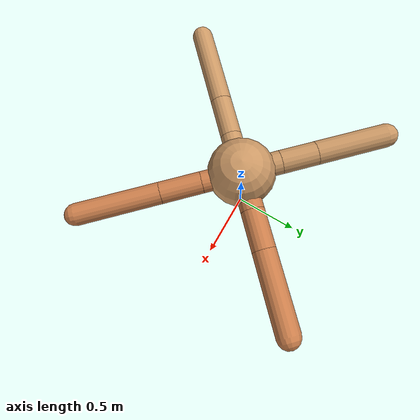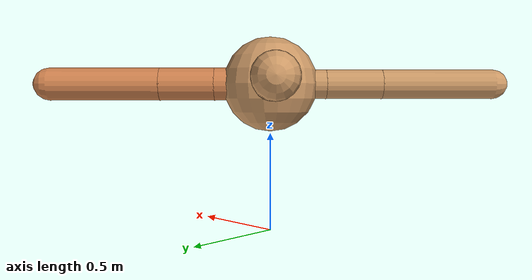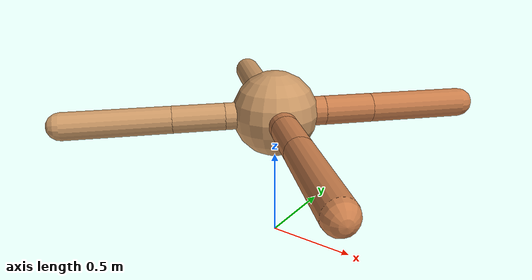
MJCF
<?xml version="1.0" ?>
<mujoco model="ant">

	<compiler angle="degree" coordinate="local" inertiafromgeom="true"/>

	<option integrator="RK4" timestep="0.01"/>

	<custom>

		<numeric data="0.0 0.0 0.55 1.0 0.0 0.0 0.0 0.0 1.0 0.0 -1.0 0.0 -1.0 0.0 1.0" name="init_qpos"/>

	</custom>

	<default>

		<joint armature="1" damping="1" limited="true"/>

		<geom conaffinity="0" condim="3" density="5.0" friction="1.5 0.1 0.1" margin="0.01" rgba="0.8 0.6 0.4 1"/>

	</default>

	<worldbody>

		<body name="torso" pos="0 0 0.75">

			<geom name="torso_geom" pos="0 0 0" size="0.23957215124233633" type="sphere"/>

			<!--joint armature="0" damping="0" limited="false" margin="0.01" name="root" pos="0 0 0" type="free"/-->

			<body name="front_left_leg" pos="0 0 0">

				<geom fromto="0 0 0 0.2 0.2 0" name="aux_1_geom" size="0.08296362918592907" type="capsule" rgba=".8 .5 .3 1"/>

				<body name="aux_1" pos="0.2 0.2 0">

					<joint axis="0 0 1" name="hip_1" pos="0.0 0.0 0.0" range="-40 40" type="hinge"/>

					<geom fromto="0 0 0 0.19518618902544937 0.19518618902544937 0" name="left_leg_geom" size="0.08296362918592907" type="capsule" rgba=".8 .5 .3 1"/>

					<body pos="0.19518618902544937 0.19518618902544937 0" name="front_left_foot">

						<joint axis="-1 1 0" name="ankle_1" pos="0.0 0.0 0.0" range="30 100" type="hinge"/>

						<geom fromto="0 0 0 0.39037237805089875 0.39037237805089875 0" name="left_ankle_geom" size="0.08296362918592907" type="capsule" rgba=".8 .5 .3 1"/>

					</body>

				</body>

			</body>

			<body name="front_right_leg" pos="0 0 0">

				<geom fromto="0 0 0 -0.2 0.2 0" name="aux_2_geom" size="0.08476134487804439" type="capsule"/>

				<body name="aux_2" pos="-0.2 0.2 0">

					<joint axis="0 0 1" name="hip_2" pos="0.0 0.0 0.0" range="-40 40" type="hinge"/>

					<geom fromto="0 0 0 -0.18395324812337488 0.18395324812337488 0" name="right_leg_geom" size="0.08476134487804439" type="capsule"/>

					<body pos="-0.18395324812337488 0.18395324812337488 0" name="front_right_foot">

						<joint axis="1 1 0" name="ankle_2" pos="0.0 0.0 0.0" range="-100 -30" type="hinge"/>

						<geom fromto="0 0 0 -0.36790649624674976 0.36790649624674976 0" name="right_ankle_geom" size="0.08476134487804439" type="capsule"/>

					</body>

				</body>

			</body>

			<body name="left_back_leg" pos="0 0 0">

				<geom fromto="0 0 0 -0.2 -0.2 0" name="aux_3_geom" size="0.07511366833895489" type="capsule"/>

				<body name="aux_3" pos="-0.2 -0.2 0">

					<joint axis="0 0 1" name="hip_3" pos="0.0 0.0 0.0" range="-40 40" type="hinge"/>

					<geom fromto="0 0 0 -0.20053350394353964 -0.20053350394353964 0" name="back_leg_geom" size="0.07511366833895489" type="capsule"/>

					<body pos="-0.20053350394353964 -0.20053350394353964 0" name="left_back_foot">

						<joint axis="-1 1 0" name="ankle_3" pos="0.0 0.0 0.0" range="-100 -30" type="hinge"/>

						<geom fromto="0 0 0 -0.4010670078870793 -0.4010670078870793 0" name="third_ankle_geom" size="0.07511366833895489" type="capsule"/>

					</body>

				</body>

			</body>

			<body name="right_back_leg" pos="0 0 0">

				<geom fromto="0 0 0 0.2 -0.2 0" name="aux_4_geom" size="0.07747291420844855" type="capsule" rgba=".8 .5 .3 1"/>

				<body name="aux_4" pos="0.2 -0.2 0">

					<joint axis="0 0 1" name="hip_4" pos="0.0 0.0 0.0" range="-40 40" type="hinge"/>

					<geom fromto="0 0 0 0.20486943904900645 -0.20486943904900645 0" name="rightback_leg_geom" size="0.07747291420844855" type="capsule" rgba=".8 .5 .3 1"/>

					<body pos="0.20486943904900645 -0.20486943904900645 0" name="right_back_foot">

						<joint axis="1 1 0" name="ankle_4" pos="0.0 0.0 0.0" range="30 100" type="hinge"/>

						<geom fromto="0 0 0 0.4097388780980129 -0.4097388780980129 0" name="fourth_ankle_geom" size="0.07747291420844855" type="capsule" rgba=".8 .5 .3 1"/>

					</body>

				</body>

			</body>

		</body>

	</worldbody>

	<actuator>

		<motor ctrllimited="true" ctrlrange="-1.0 1.0" joint="hip_4" gear="150"/>

		<motor ctrllimited="true" ctrlrange="-1.0 1.0" joint="ankle_4" gear="150"/>

		<motor ctrllimited="true" ctrlrange="-1.0 1.0" joint="hip_1" gear="150"/>

		<motor ctrllimited="true" ctrlrange="-1.0 1.0" joint="ankle_1" gear="150"/>

		<motor ctrllimited="true" ctrlrange="-1.0 1.0" joint="hip_2" gear="150"/>

		<motor ctrllimited="true" ctrlrange="-1.0 1.0" joint="ankle_2" gear="150"/>

		<motor ctrllimited="true" ctrlrange="-1.0 1.0" joint="hip_3" gear="150"/>

		<motor ctrllimited="true" ctrlrange="-1.0 1.0" joint="ankle_3" gear="150"/>

	</actuator>

</mujoco>
